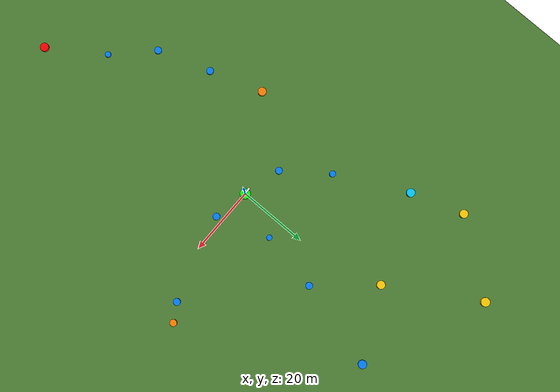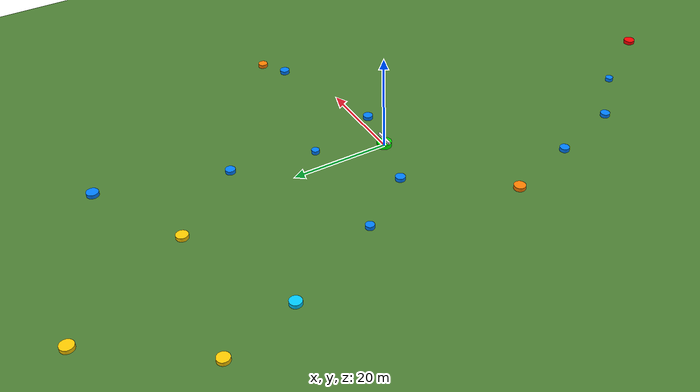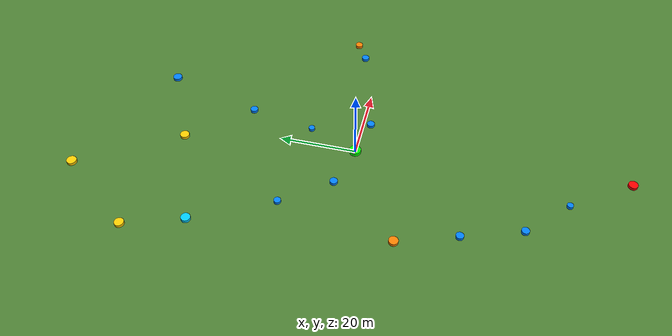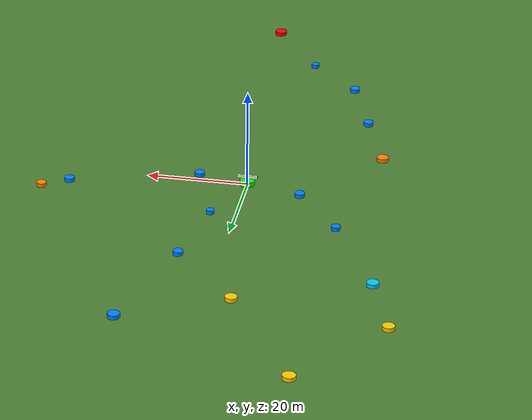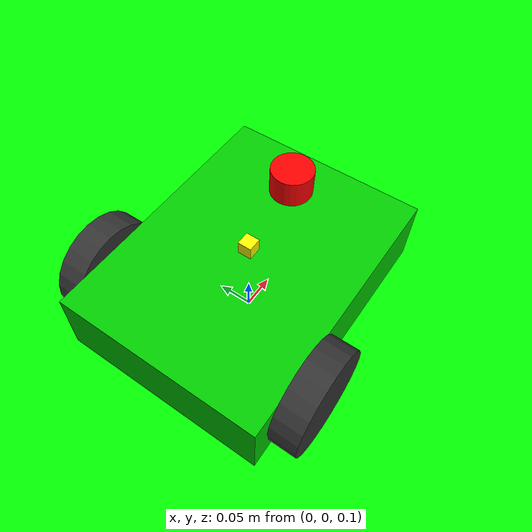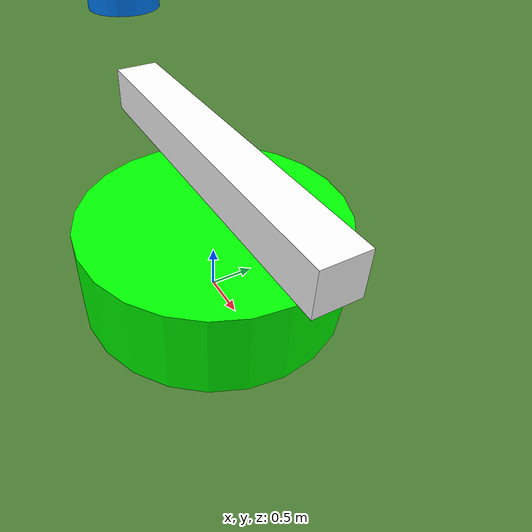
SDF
<?xml version="1.0" ?>
<sdf version="1.8">
  <world name="ethiopia_cities">

    <!-- Physics -->
    <physics name="1ms" type="ode">
      <max_step_size>0.001</max_step_size>
      <real_time_factor>1.0</real_time_factor>
    </physics>

    <!-- Plugins for ROS2 integration -->
    <plugin filename="gz-sim-physics-system" name="gz::sim::systems::Physics"/>
    <plugin filename="gz-sim-user-commands-system" name="gz::sim::systems::UserCommands"/>
    <plugin filename="gz-sim-scene-broadcaster-system" name="gz::sim::systems::SceneBroadcaster"/>
    <plugin filename="gz-sim-sensors-system" name="gz::sim::systems::Sensors">
      <render_engine>ogre2</render_engine>
    </plugin>

    <!-- Scene -->
    <scene>
      <ambient>0.4 0.4 0.4 1</ambient>
      <background>0.7 0.85 1.0 1</background>
      <shadows>true</shadows>
    </scene>

    <!-- Sun Light -->
    <light type="directional" name="sun">
      <cast_shadows>true</cast_shadows>
      <pose>0 0 100 0 0 0</pose>
      <diffuse>0.8 0.8 0.8 1</diffuse>
      <specular>0.2 0.2 0.2 1</specular>
      <attenuation>
        <range>1000</range>
        <constant>0.9</constant>
        <linear>0.01</linear>
        <quadratic>0.001</quadratic>
      </attenuation>
      <direction>-0.5 0.1 -0.9</direction>
    </light>

    <!-- Ground Plane -->
    <model name="ground_plane">
      <static>true</static>
      <link name="link">
        <collision name="collision">
          <geometry>
            <plane>
              <normal>0 0 1</normal>
              <size>200 200</size>
            </plane>
          </geometry>
        </collision>
        <visual name="visual">
          <geometry>
            <plane>
              <normal>0 0 1</normal>
              <size>200 200</size>
            </plane>
          </geometry>
          <material>
            <ambient>0.3 0.5 0.2 1</ambient>
            <diffuse>0.3 0.5 0.2 1</diffuse>
          </material>
        </visual>
      </link>
    </model>

    <!-- ==================== ETHIOPIAN CITIES ==================== -->

    <!-- Addis Ababa (Capital - Origin) - GREEN -->
    <model name="addis_ababa">
      <static>true</static>
      <pose>0 0 0.5 0 0 0</pose>
      <link name="link">
        <visual name="marker">
          <geometry>
            <cylinder>
              <radius>1.5</radius>
              <length>1.0</length>
            </cylinder>
          </geometry>
          <material>
            <ambient>0.0 0.8 0.0 1</ambient>
            <diffuse>0.0 1.0 0.0 1</diffuse>
          </material>
        </visual>
        <visual name="label">
          <pose>0 0 1.2 0 0 0</pose>
          <geometry>
            <box>
              <size>4.0 0.5 0.5</size>
            </box>
          </geometry>
          <material>
            <ambient>1.0 1.0 1.0 1</ambient>
            <diffuse>1.0 1.0 1.0 1</diffuse>
          </material>
        </visual>
      </link>
    </model>

    <!-- Ambo - BLUE -->
    <model name="ambo">
      <static>true</static>
      <pose>-11 3 0.4 0 0 0</pose>
      <link name="link">
        <visual name="marker">
          <geometry>
            <cylinder>
              <radius>1.0</radius>
              <length>0.8</length>
            </cylinder>
          </geometry>
          <material>
            <ambient>0.0 0.4 0.8 1</ambient>
            <diffuse>0.0 0.5 1.0 1</diffuse>
          </material>
        </visual>
      </link>
    </model>

    <!-- Jimma - ORANGE (Coffee region) -->
    <model name="jimma">
      <static>true</static>
      <pose>-25 -15 0.4 0 0 0</pose>
      <link name="link">
        <visual name="marker">
          <geometry>
            <cylinder>
              <radius>1.2</radius>
              <length>0.8</length>
            </cylinder>
          </geometry>
          <material>
            <ambient>0.8 0.4 0.0 1</ambient>
            <diffuse>1.0 0.5 0.0 1</diffuse>
          </material>
        </visual>
      </link>
    </model>

    <!-- Wolaita Sodo - BLUE -->
    <model name="wolaita_sodo">
      <static>true</static>
      <pose>-20 -30 0.4 0 0 0</pose>
      <link name="link">
        <visual name="marker">
          <geometry>
            <cylinder>
              <radius>1.0</radius>
              <length>0.8</length>
            </cylinder>
          </geometry>
          <material>
            <ambient>0.0 0.4 0.8 1</ambient>
            <diffuse>0.0 0.5 1.0 1</diffuse>
          </material>
        </visual>
      </link>
    </model>

    <!-- Arba Minch - BLUE -->
    <model name="arba_minch">
      <static>true</static>
      <pose>-15 -45 0.4 0 0 0</pose>
      <link name="link">
        <visual name="marker">
          <geometry>
            <cylinder>
              <radius>1.0</radius>
              <length>0.8</length>
            </cylinder>
          </geometry>
          <material>
            <ambient>0.0 0.4 0.8 1</ambient>
            <diffuse>0.0 0.5 1.0 1</diffuse>
          </material>
        </visual>
      </link>
    </model>

    <!-- Konso - BLUE -->
    <model name="konso">
      <static>true</static>
      <pose>-5 -55 0.4 0 0 0</pose>
      <link name="link">
        <visual name="marker">
          <geometry>
            <cylinder>
              <radius>0.8</radius>
              <length>0.8</length>
            </cylinder>
          </geometry>
          <material>
            <ambient>0.0 0.4 0.8 1</ambient>
            <diffuse>0.0 0.5 1.0 1</diffuse>
          </material>
        </visual>
      </link>
    </model>

    <!-- Moyale - RED (Goal) -->
    <model name="moyale">
      <static>true</static>
      <pose>5 -70 0.4 0 0 0</pose>
      <link name="link">
        <visual name="marker">
          <geometry>
            <cylinder>
              <radius>1.2</radius>
              <length>0.8</length>
            </cylinder>
          </geometry>
          <material>
            <ambient>0.8 0.0 0.0 1</ambient>
            <diffuse>1.0 0.0 0.0 1</diffuse>
          </material>
        </visual>
      </link>
    </model>

    <!-- Adama - BLUE -->
    <model name="adama">
      <static>true</static>
      <pose>10 -2 0.4 0 0 0</pose>
      <link name="link">
        <visual name="marker">
          <geometry>
            <cylinder>
              <radius>1.0</radius>
              <length>0.8</length>
            </cylinder>
          </geometry>
          <material>
            <ambient>0.0 0.4 0.8 1</ambient>
            <diffuse>0.0 0.5 1.0 1</diffuse>
          </material>
        </visual>
      </link>
    </model>

    <!-- Dire Dawa - BLUE -->
    <model name="dire_dawa">
      <static>true</static>
      <pose>35 5 0.4 0 0 0</pose>
      <link name="link">
        <visual name="marker">
          <geometry>
            <cylinder>
              <radius>1.0</radius>
              <length>0.8</length>
            </cylinder>
          </geometry>
          <material>
            <ambient>0.0 0.4 0.8 1</ambient>
            <diffuse>0.0 0.5 1.0 1</diffuse>
          </material>
        </visual>
      </link>
    </model>

    <!-- Harar - ORANGE (Coffee region) -->
    <model name="harar">
      <static>true</static>
      <pose>40 8 0.4 0 0 0</pose>
      <link name="link">
        <visual name="marker">
          <geometry>
            <cylinder>
              <radius>1.0</radius>
              <length>0.8</length>
            </cylinder>
          </geometry>
          <material>
            <ambient>0.8 0.4 0.0 1</ambient>
            <diffuse>1.0 0.5 0.0 1</diffuse>
          </material>
        </visual>
      </link>
    </model>

    <!-- Debre Berhan - BLUE -->
    <model name="debre_berhan">
      <static>true</static>
      <pose>5 13 0.4 0 0 0</pose>
      <link name="link">
        <visual name="marker">
          <geometry>
            <cylinder>
              <radius>0.8</radius>
              <length>0.8</length>
            </cylinder>
          </geometry>
          <material>
            <ambient>0.0 0.4 0.8 1</ambient>
            <diffuse>0.0 0.5 1.0 1</diffuse>
          </material>
        </visual>
      </link>
    </model>

    <!-- Dessie - BLUE -->
    <model name="dessie">
      <static>true</static>
      <pose>8 30 0.4 0 0 0</pose>
      <link name="link">
        <visual name="marker">
          <geometry>
            <cylinder>
              <radius>1.0</radius>
              <length>0.8</length>
            </cylinder>
          </geometry>
          <material>
            <ambient>0.0 0.4 0.8 1</ambient>
            <diffuse>0.0 0.5 1.0 1</diffuse>
          </material>
        </visual>
      </link>
    </model>

    <!-- Lalibela - GOLD (Historical) -->
    <model name="lalibela">
      <static>true</static>
      <pose>-5 45 0.4 0 0 0</pose>
      <link name="link">
        <visual name="marker">
          <geometry>
            <cylinder>
              <radius>1.2</radius>
              <length>0.8</length>
            </cylinder>
          </geometry>
          <material>
            <ambient>0.8 0.6 0.0 1</ambient>
            <diffuse>1.0 0.8 0.0 1</diffuse>
          </material>
        </visual>
      </link>
    </model>

    <!-- Bahir Dar - CYAN (Lake Tana) -->
    <model name="bahir_dar">
      <static>true</static>
      <pose>-30 35 0.4 0 0 0</pose>
      <link name="link">
        <visual name="marker">
          <geometry>
            <cylinder>
              <radius>1.2</radius>
              <length>0.8</length>
            </cylinder>
          </geometry>
          <material>
            <ambient>0.0 0.6 0.8 1</ambient>
            <diffuse>0.0 0.8 1.0 1</diffuse>
          </material>
        </visual>
      </link>
    </model>

    <!-- Gondar - GOLD (Historical) -->
    <model name="gondar">
      <static>true</static>
      <pose>-35 50 0.4 0 0 0</pose>
      <link name="link">
        <visual name="marker">
          <geometry>
            <cylinder>
              <radius>1.2</radius>
              <length>0.8</length>
            </cylinder>
          </geometry>
          <material>
            <ambient>0.8 0.6 0.0 1</ambient>
            <diffuse>1.0 0.8 0.0 1</diffuse>
          </material>
        </visual>
      </link>
    </model>

    <!-- Axum - GOLD (Historical) -->
    <model name="axum">
      <static>true</static>
      <pose>-20 70 0.4 0 0 0</pose>
      <link name="link">
        <visual name="marker">
          <geometry>
            <cylinder>
              <radius>1.3</radius>
              <length>0.8</length>
            </cylinder>
          </geometry>
          <material>
            <ambient>0.8 0.6 0.0 1</ambient>
            <diffuse>1.0 0.8 0.0 1</diffuse>
          </material>
        </visual>
      </link>
    </model>

    <!-- Mekelle - BLUE -->
    <model name="mekelle">
      <static>true</static>
      <pose>15 55 0.4 0 0 0</pose>
      <link name="link">
        <visual name="marker">
          <geometry>
            <cylinder>
              <radius>1.2</radius>
              <length>0.8</length>
            </cylinder>
          </geometry>
          <material>
            <ambient>0.0 0.4 0.8 1</ambient>
            <diffuse>0.0 0.5 1.0 1</diffuse>
          </material>
        </visual>
      </link>
    </model>

    <!-- Debre Markos - BLUE -->
    <model name="debre_markos">
      <static>true</static>
      <pose>-20 15 0.4 0 0 0</pose>
      <link name="link">
        <visual name="marker">
          <geometry>
            <cylinder>
              <radius>0.9</radius>
              <length>0.8</length>
            </cylinder>
          </geometry>
          <material>
            <ambient>0.0 0.4 0.8 1</ambient>
            <diffuse>0.0 0.5 1.0 1</diffuse>
          </material>
        </visual>
      </link>
    </model>

    <!-- ==================== THREE-WHEEL ROBOT ==================== -->
    <model name="traveling_robot">
      <pose>0 0 0.1 0 0 0</pose>

      <!-- Chassis -->
      <link name="chassis">
        <pose>0 0 0.075 0 0 0</pose>
        <inertial>
          <mass>5.0</mass>
          <inertia>
            <ixx>0.0417</ixx>
            <iyy>0.0717</iyy>
            <izz>0.1042</izz>
          </inertia>
        </inertial>
        <collision name="collision">
          <geometry>
            <box>
              <size>0.4 0.3 0.1</size>
            </box>
          </geometry>
        </collision>
        <visual name="visual">
          <geometry>
            <box>
              <size>0.4 0.3 0.1</size>
            </box>
          </geometry>
          <material>
            <ambient>0.0 0.5 0.0 1</ambient>
            <diffuse>0.0 0.8 0.0 1</diffuse>
          </material>
        </visual>
      </link>

      <!-- Left Wheel -->
      <link name="left_wheel">
        <pose>-0.1 0.17 0.075 -1.5707 0 0</pose>
        <inertial>
          <mass>0.5</mass>
          <inertia>
            <ixx>0.0007</ixx>
            <iyy>0.0007</iyy>
            <izz>0.0014</izz>
          </inertia>
        </inertial>
        <collision name="collision">
          <geometry>
            <cylinder>
              <radius>0.075</radius>
              <length>0.04</length>
            </cylinder>
          </geometry>
          <surface>
            <friction>
              <ode>
                <mu>1.0</mu>
                <mu2>1.0</mu2>
              </ode>
            </friction>
          </surface>
        </collision>
        <visual name="visual">
          <geometry>
            <cylinder>
              <radius>0.075</radius>
              <length>0.04</length>
            </cylinder>
          </geometry>
          <material>
            <ambient>0.1 0.1 0.1 1</ambient>
            <diffuse>0.2 0.2 0.2 1</diffuse>
          </material>
        </visual>
      </link>

      <!-- Right Wheel -->
      <link name="right_wheel">
        <pose>-0.1 -0.17 0.075 -1.5707 0 0</pose>
        <inertial>
          <mass>0.5</mass>
          <inertia>
            <ixx>0.0007</ixx>
            <iyy>0.0007</iyy>
            <izz>0.0014</izz>
          </inertia>
        </inertial>
        <collision name="collision">
          <geometry>
            <cylinder>
              <radius>0.075</radius>
              <length>0.04</length>
            </cylinder>
          </geometry>
          <surface>
            <friction>
              <ode>
                <mu>1.0</mu>
                <mu2>1.0</mu2>
              </ode>
            </friction>
          </surface>
        </collision>
        <visual name="visual">
          <geometry>
            <cylinder>
              <radius>0.075</radius>
              <length>0.04</length>
            </cylinder>
          </geometry>
          <material>
            <ambient>0.1 0.1 0.1 1</ambient>
            <diffuse>0.2 0.2 0.2 1</diffuse>
          </material>
        </visual>
      </link>

      <!-- Caster Wheel -->
      <link name="caster">
        <pose>0.13 0 0.04 0 0 0</pose>
        <inertial>
          <mass>0.2</mass>
          <inertia>
            <ixx>0.00013</ixx>
            <iyy>0.00013</iyy>
            <izz>0.00013</izz>
          </inertia>
        </inertial>
        <collision name="collision">
          <geometry>
            <sphere>
              <radius>0.04</radius>
            </sphere>
          </geometry>
          <surface>
            <friction>
              <ode>
                <mu>0.0</mu>
                <mu2>0.0</mu2>
              </ode>
            </friction>
          </surface>
        </collision>
        <visual name="visual">
          <geometry>
            <sphere>
              <radius>0.04</radius>
            </sphere>
          </geometry>
          <material>
            <ambient>0.5 0.5 0.5 1</ambient>
            <diffuse>0.7 0.7 0.7 1</diffuse>
          </material>
        </visual>
      </link>

      <!-- Lidar -->
      <link name="lidar_link">
        <pose>0.1 0 0.18 0 0 0</pose>
        <inertial>
          <mass>0.1</mass>
          <inertia>
            <ixx>0.00002</ixx>
            <iyy>0.00002</iyy>
            <izz>0.00002</izz>
          </inertia>
        </inertial>
        <visual name="visual">
          <geometry>
            <cylinder>
              <radius>0.03</radius>
              <length>0.04</length>
            </cylinder>
          </geometry>
          <material>
            <ambient>0.8 0.0 0.0 1</ambient>
            <diffuse>1.0 0.0 0.0 1</diffuse>
          </material>
        </visual>
        <sensor name="lidar" type="gpu_lidar">
          <always_on>true</always_on>
          <update_rate>10</update_rate>
          <lidar>
            <scan>
              <horizontal>
                <samples>360</samples>
                <resolution>1</resolution>
                <min_angle>-3.14159</min_angle>
                <max_angle>3.14159</max_angle>
              </horizontal>
            </scan>
            <range>
              <min>0.1</min>
              <max>30.0</max>
              <resolution>0.01</resolution>
            </range>
          </lidar>
          <visualize>true</visualize>
        </sensor>
      </link>

      <!-- IMU -->
      <link name="imu_link">
        <pose>0 0 0.14 0 0 0</pose>
        <inertial>
          <mass>0.01</mass>
          <inertia>
            <ixx>0.000001</ixx>
            <iyy>0.000001</iyy>
            <izz>0.000001</izz>
          </inertia>
        </inertial>
        <visual name="visual">
          <geometry>
            <box>
              <size>0.02 0.02 0.02</size>
            </box>
          </geometry>
          <material>
            <ambient>1.0 1.0 0.0 1</ambient>
            <diffuse>1.0 1.0 0.0 1</diffuse>
          </material>
        </visual>
        <sensor name="imu" type="imu">
          <always_on>true</always_on>
          <update_rate>100</update_rate>
        </sensor>
      </link>

      <!-- Joints -->
      <joint name="left_wheel_joint" type="revolute">
        <parent>chassis</parent>
        <child>left_wheel</child>
        <axis>
          <xyz>0 0 1</xyz>
        </axis>
      </joint>

      <joint name="right_wheel_joint" type="revolute">
        <parent>chassis</parent>
        <child>right_wheel</child>
        <axis>
          <xyz>0 0 1</xyz>
        </axis>
      </joint>

      <joint name="caster_joint" type="fixed">
        <parent>chassis</parent>
        <child>caster</child>
      </joint>

      <joint name="lidar_joint" type="fixed">
        <parent>chassis</parent>
        <child>lidar_link</child>
      </joint>

      <joint name="imu_joint" type="fixed">
        <parent>chassis</parent>
        <child>imu_link</child>
      </joint>

      <!-- Differential Drive Plugin -->
      <plugin filename="gz-sim-diff-drive-system" name="gz::sim::systems::DiffDrive">
        <left_joint>left_wheel_joint</left_joint>
        <right_joint>right_wheel_joint</right_joint>
        <wheel_separation>0.34</wheel_separation>
        <wheel_radius>0.075</wheel_radius>
        <max_linear_acceleration>2</max_linear_acceleration>
        <min_linear_acceleration>-2</min_linear_acceleration>
        <max_angular_acceleration>3</max_angular_acceleration>
        <min_angular_acceleration>-3</min_angular_acceleration>
        <topic>/cmd_vel</topic>
        <odom_topic>/odom</odom_topic>
        <tf_topic>/tf</tf_topic>
        <frame_id>odom</frame_id>
        <child_frame_id>chassis</child_frame_id>
        <odom_publish_frequency>50</odom_publish_frequency>
      </plugin>

    </model>

  </world>
</sdf>
